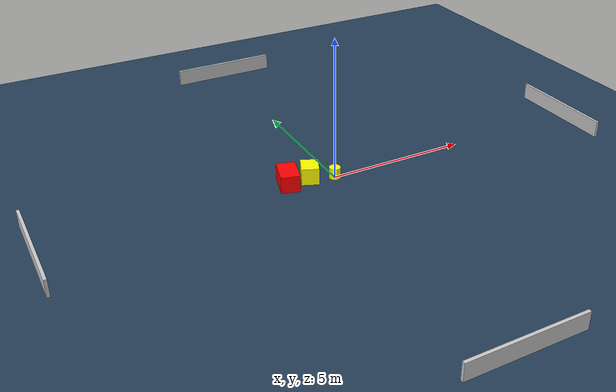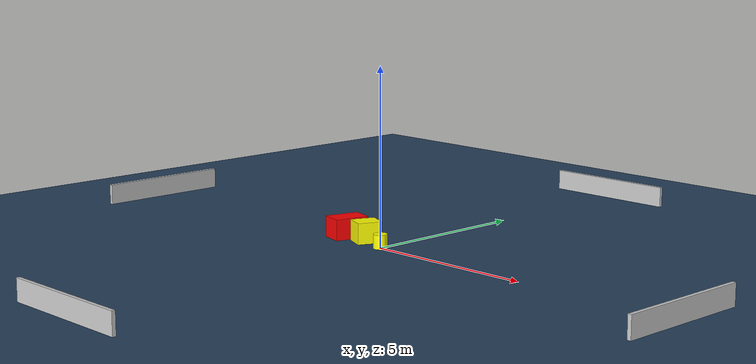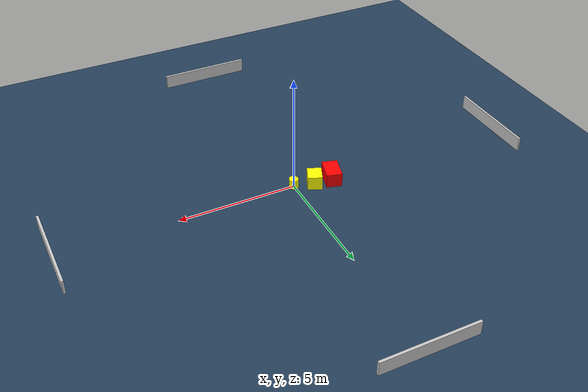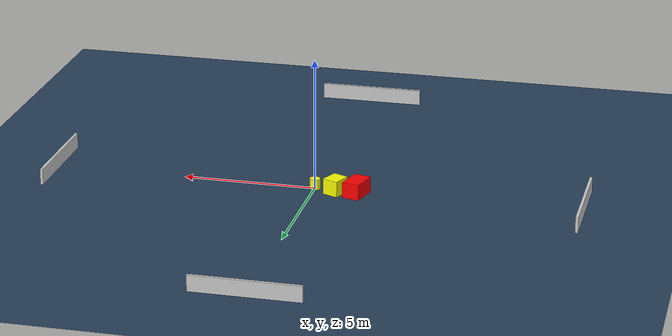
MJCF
<?xml version="1.0" ?>
<mujoco model="generated_environment">
  <option timestep="0.01" integrator="RK4" cone="elliptic"/>
  <default>
    <geom density="1"/>
  </default>
  <asset>
    <texture builtin="gradient" height="3072" name="skybox" rgb1="0.3 0.5 0.7" rgb2="0 0 0" type="skybox" width="512"/>
    <texture builtin="checker" height="300" name="groundplane" rgb1="0.2 0.3 0.4" rgb2="0.1 0.2 0.3" type="2d" width="300"/>
    <material name="groundplane" reflectance="0.2" texrepeat="5 5" texture="groundplane"/>
  </asset>
  <worldbody>
    <light dir="0 0 -1" directional="true" pos="0 0 1.5"/>
    <geom condim="3" friction="0.5 0.005 0.001" material="groundplane" name="floor" pos="0 0 0" size="0 0 0.05" type="plane"/>
    <body name="walls">
      <geom name="wall_1" condim="4" pos="-10.0 0.0 0.3" rgba="0.800000011920929 0.800000011920929 0.800000011920929 1.0" size="0.05 2.0 0.3" type="box"/>
      <geom name="wall_2" condim="4" pos="10.0 0.0 0.3" rgba="0.800000011920929 0.800000011920929 0.800000011920929 1.0" size="0.05 2.0 0.3" type="box"/>
      <geom name="wall_3" condim="4" pos="0.0 -10.0 0.3" rgba="0.800000011920929 0.800000011920929 0.800000011920929 1.0" size="2.0 0.05 0.3" type="box"/>
      <geom name="wall_4" condim="4" pos="0.0 10.0 0.3" rgba="0.800000011920929 0.800000011920929 0.800000011920929 1.0" size="2.0 0.05 0.3" type="box"/>
    </body>
    <body name="robot">
      <joint name="joint_x" type="slide" pos="0 0 0" axis="1 0 0"/>
      <joint name="joint_y" type="slide" pos="0 0 0" axis="0 1 0"/>
      <geom name="robot" type="cylinder" pos="0.0 0.0 0.2" size="0.2 0.2 0.0" mass="5.0" friction="1.0 0.005 0.0001" condim="4" rgba="1.0 1.0 0.0 1.0"/>
    </body>
    <body name="obstacle_1_movable">
      <geom name="obstacle_1_movable" condim="4" pos="-0.8330752372760716 0.25608202896760424 0.3" euler="0 0 66.79625790532688" friction="0.0 0.005 0.001" rgba="1.0 1.0 0.0 1.0" size="0.34979013797484204 0.3023577509751287 0.3" type="box" mass="0.1"/>
      <joint type="free"/>
    </body>
    <body name="obstacle_2_static">
      <geom name="obstacle_2_static" condim="4" pos="-1.6343155609529496 0.27033613428182807 0.3" euler="0 0 344.8244000735898" friction="0.0 0.005 0.001" rgba="1.0 0.0 0.0 1.0" size="0.3283478402327129 0.5002348326763362 0.3" type="box"/>
    </body>
  </worldbody>
  <actuator>
    <motor name="actuator_x" joint="joint_x" gear="1" ctrlrange="-1 1"/>
    <motor name="actuator_y" joint="joint_y" gear="1" ctrlrange="-1 1"/>
  </actuator>
</mujoco>
